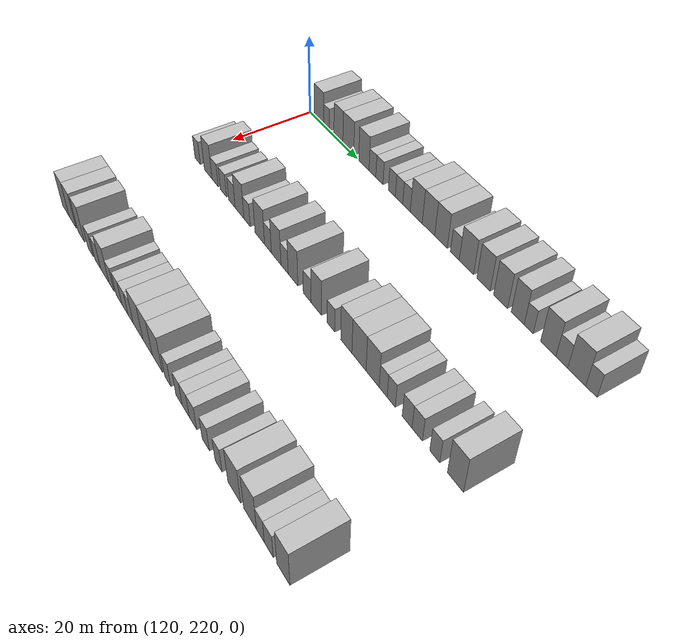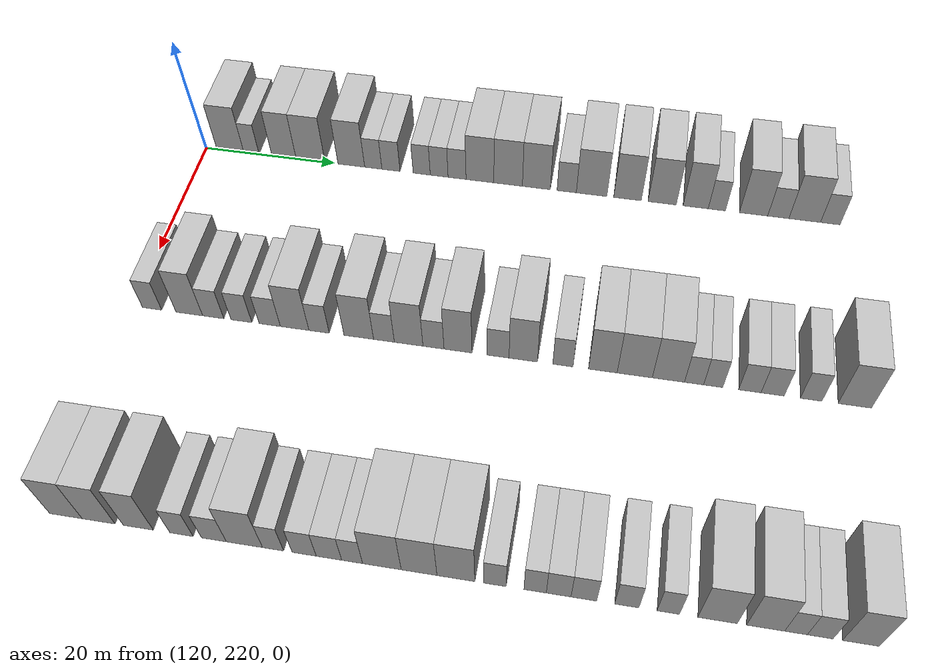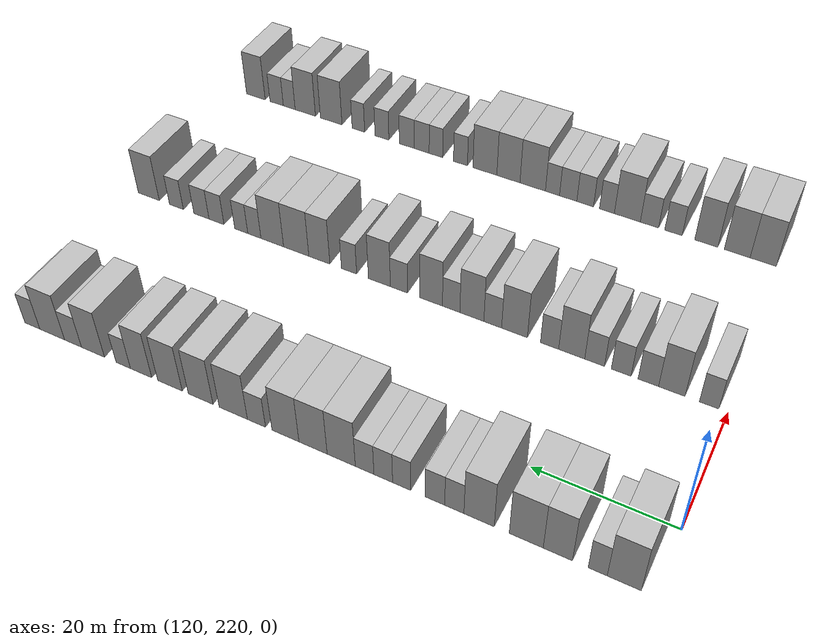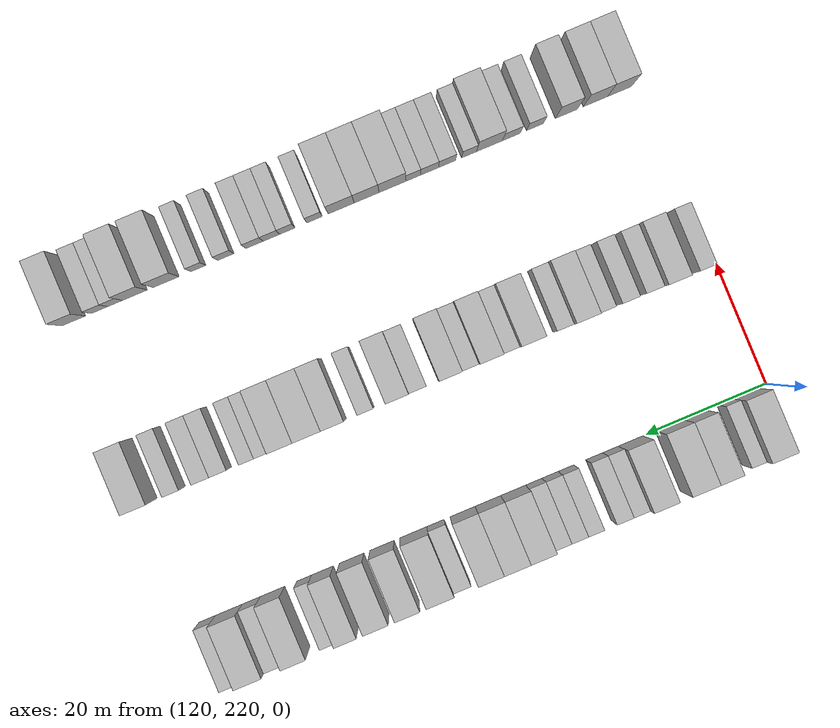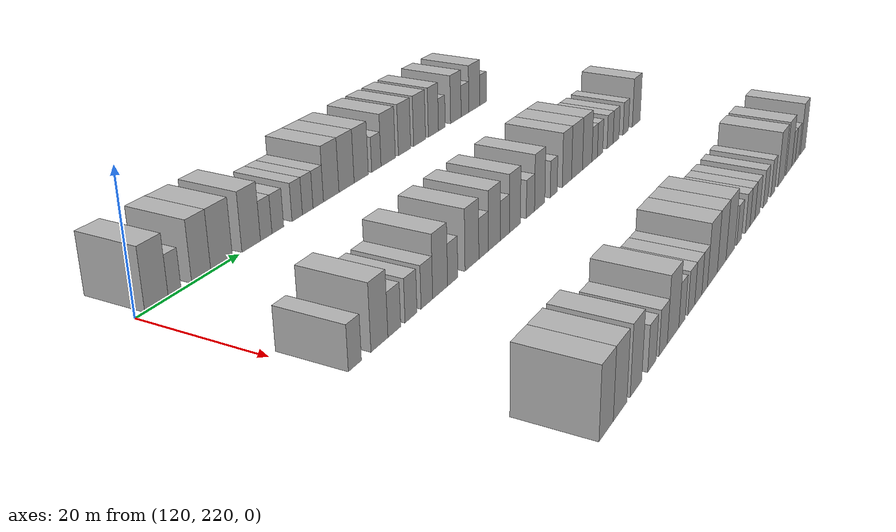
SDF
<sdf version="1.6">
 <world name="default">
  <model name="building_838">
   <static>1</static>
   <pose>115.0000 223.7753 0 0.000000 0.000000 0.000000</pose>
   <link name="link">
    <pose>0 0 4.50 0 0 0</pose>
    <collision name="collision"><geometry><box><size>10.0000 4.2374 9.0000</size></box></geometry></collision>
    <visual name="visual">
     <cast_shadows>0</cast_shadows>
     <geometry><box><size>10.0000 4.2374 9.0000</size></box></geometry>
     <material>
      <script>
       <uri>model://HANNAS_wall/materials/scripts</uri>
       <uri>model://HANNAS_wall/materials/textures</uri>
       <name>vrc/HANNAS_wall</name>
      </script>
     </material>
    </visual>
   </link>
  </model>
  <model name="building_839">
   <static>1</static>
   <pose>115.0000 227.0944 0 0.000000 0.000000 0.000000</pose>
   <link name="link">
    <pose>0 0 3.00 0 0 0</pose>
    <collision name="collision"><geometry><box><size>10.0000 2.4007 6.0000</size></box></geometry></collision>
    <visual name="visual">
     <cast_shadows>0</cast_shadows>
     <geometry><box><size>10.0000 2.4007 6.0000</size></box></geometry>
     <material>
      <script>
       <uri>model://HANNAS_wall/materials/scripts</uri>
       <uri>model://HANNAS_wall/materials/textures</uri>
       <name>vrc/HANNAS_wall</name>
      </script>
     </material>
    </visual>
   </link>
  </model>
  <model name="building_840">
   <static>1</static>
   <pose>115.0000 232.1827 0 0.000000 0.000000 0.000000</pose>
   <link name="link">
    <pose>0 0 4.50 0 0 0</pose>
    <collision name="collision"><geometry><box><size>10.0000 3.7760 9.0000</size></box></geometry></collision>
    <visual name="visual">
     <cast_shadows>0</cast_shadows>
     <geometry><box><size>10.0000 3.7760 9.0000</size></box></geometry>
     <material>
      <script>
       <uri>model://HANNAS_wall/materials/scripts</uri>
       <uri>model://HANNAS_wall/materials/textures</uri>
       <name>vrc/HANNAS_wall</name>
      </script>
     </material>
    </visual>
   </link>
  </model>
  <model name="building_841">
   <static>1</static>
   <pose>115.0000 236.3073 0 0.000000 0.000000 0.000000</pose>
   <link name="link">
    <pose>0 0 4.50 0 0 0</pose>
    <collision name="collision"><geometry><box><size>10.0000 4.4732 9.0000</size></box></geometry></collision>
    <visual name="visual">
     <cast_shadows>0</cast_shadows>
     <geometry><box><size>10.0000 4.4732 9.0000</size></box></geometry>
     <material>
      <script>
       <uri>model://HANNAS_wall/materials/scripts</uri>
       <uri>model://HANNAS_wall/materials/textures</uri>
       <name>vrc/HANNAS_wall</name>
      </script>
     </material>
    </visual>
   </link>
  </model>
  <model name="building_842">
   <static>1</static>
   <pose>115.0000 242.5987 0 0.000000 0.000000 0.000000</pose>
   <link name="link">
    <pose>0 0 4.50 0 0 0</pose>
    <collision name="collision"><geometry><box><size>10.0000 4.1097 9.0000</size></box></geometry></collision>
    <visual name="visual">
     <cast_shadows>0</cast_shadows>
     <geometry><box><size>10.0000 4.1097 9.0000</size></box></geometry>
     <material>
      <script>
       <uri>model://HANNAS_wall/materials/scripts</uri>
       <uri>model://HANNAS_wall/materials/textures</uri>
       <name>vrc/HANNAS_wall</name>
      </script>
     </material>
    </visual>
   </link>
  </model>
  <model name="building_843">
   <static>1</static>
   <pose>115.0000 245.9715 0 0.000000 0.000000 0.000000</pose>
   <link name="link">
    <pose>0 0 3.00 0 0 0</pose>
    <collision name="collision"><geometry><box><size>10.0000 2.6359 6.0000</size></box></geometry></collision>
    <visual name="visual">
     <cast_shadows>0</cast_shadows>
     <geometry><box><size>10.0000 2.6359 6.0000</size></box></geometry>
     <material>
      <script>
       <uri>model://HANNAS_wall/materials/scripts</uri>
       <uri>model://HANNAS_wall/materials/textures</uri>
       <name>vrc/HANNAS_wall</name>
      </script>
     </material>
    </visual>
   </link>
  </model>
  <model name="building_844">
   <static>1</static>
   <pose>115.0000 248.6667 0 0.000000 0.000000 0.000000</pose>
   <link name="link">
    <pose>0 0 3.00 0 0 0</pose>
    <collision name="collision"><geometry><box><size>10.0000 2.7545 6.0000</size></box></geometry></collision>
    <visual name="visual">
     <cast_shadows>0</cast_shadows>
     <geometry><box><size>10.0000 2.7545 6.0000</size></box></geometry>
     <material>
      <script>
       <uri>model://HANNAS_wall/materials/scripts</uri>
       <uri>model://HANNAS_wall/materials/textures</uri>
       <name>vrc/HANNAS_wall</name>
      </script>
     </material>
    </visual>
   </link>
  </model>
  <model name="building_845">
   <static>1</static>
   <pose>115.0000 253.3361 0 0.000000 0.000000 0.000000</pose>
   <link name="link">
    <pose>0 0 3.00 0 0 0</pose>
    <collision name="collision"><geometry><box><size>10.0000 2.5842 6.0000</size></box></geometry></collision>
    <visual name="visual">
     <cast_shadows>0</cast_shadows>
     <geometry><box><size>10.0000 2.5842 6.0000</size></box></geometry>
     <material>
      <script>
       <uri>model://HANNAS_wall/materials/scripts</uri>
       <uri>model://HANNAS_wall/materials/textures</uri>
       <name>vrc/HANNAS_wall</name>
      </script>
     </material>
    </visual>
   </link>
  </model>
  <model name="building_846">
   <static>1</static>
   <pose>115.0000 255.9715 0 0.000000 0.000000 0.000000</pose>
   <link name="link">
    <pose>0 0 3.00 0 0 0</pose>
    <collision name="collision"><geometry><box><size>10.0000 2.6866 6.0000</size></box></geometry></collision>
    <visual name="visual">
     <cast_shadows>0</cast_shadows>
     <geometry><box><size>10.0000 2.6866 6.0000</size></box></geometry>
     <material>
      <script>
       <uri>model://HANNAS_wall/materials/scripts</uri>
       <uri>model://HANNAS_wall/materials/textures</uri>
       <name>vrc/HANNAS_wall</name>
      </script>
     </material>
    </visual>
   </link>
  </model>
  <model name="building_847">
   <static>1</static>
   <pose>115.0000 258.6719 0 0.000000 0.000000 0.000000</pose>
   <link name="link">
    <pose>0 0 3.00 0 0 0</pose>
    <collision name="collision"><geometry><box><size>10.0000 2.7141 6.0000</size></box></geometry></collision>
    <visual name="visual">
     <cast_shadows>0</cast_shadows>
     <geometry><box><size>10.0000 2.7141 6.0000</size></box></geometry>
     <material>
      <script>
       <uri>model://HANNAS_wall/materials/scripts</uri>
       <uri>model://HANNAS_wall/materials/textures</uri>
       <name>vrc/HANNAS_wall</name>
      </script>
     </material>
    </visual>
   </link>
  </model>
  <model name="building_848">
   <static>1</static>
   <pose>115.0000 262.1122 0 0.000000 0.000000 0.000000</pose>
   <link name="link">
    <pose>0 0 4.50 0 0 0</pose>
    <collision name="collision"><geometry><box><size>10.0000 4.1666 9.0000</size></box></geometry></collision>
    <visual name="visual">
     <cast_shadows>0</cast_shadows>
     <geometry><box><size>10.0000 4.1666 9.0000</size></box></geometry>
     <material>
      <script>
       <uri>model://HANNAS_wall/materials/scripts</uri>
       <uri>model://HANNAS_wall/materials/textures</uri>
       <name>vrc/HANNAS_wall</name>
      </script>
     </material>
    </visual>
   </link>
  </model>
  <model name="building_849">
   <static>1</static>
   <pose>115.0000 266.3193 0 0.000000 0.000000 0.000000</pose>
   <link name="link">
    <pose>0 0 4.50 0 0 0</pose>
    <collision name="collision"><geometry><box><size>10.0000 4.2475 9.0000</size></box></geometry></collision>
    <visual name="visual">
     <cast_shadows>0</cast_shadows>
     <geometry><box><size>10.0000 4.2475 9.0000</size></box></geometry>
     <material>
      <script>
       <uri>model://HANNAS_wall/materials/scripts</uri>
       <uri>model://HANNAS_wall/materials/textures</uri>
       <name>vrc/HANNAS_wall</name>
      </script>
     </material>
    </visual>
   </link>
  </model>
  <model name="building_850">
   <static>1</static>
   <pose>115.0000 270.5108 0 0.000000 0.000000 0.000000</pose>
   <link name="link">
    <pose>0 0 4.50 0 0 0</pose>
    <collision name="collision"><geometry><box><size>10.0000 4.1355 9.0000</size></box></geometry></collision>
    <visual name="visual">
     <cast_shadows>0</cast_shadows>
     <geometry><box><size>10.0000 4.1355 9.0000</size></box></geometry>
     <material>
      <script>
       <uri>model://HANNAS_wall/materials/scripts</uri>
       <uri>model://HANNAS_wall/materials/textures</uri>
       <name>vrc/HANNAS_wall</name>
      </script>
     </material>
    </visual>
   </link>
  </model>
  <model name="building_851">
   <static>1</static>
   <pose>115.0000 274.9958 0 0.000000 0.000000 0.000000</pose>
   <link name="link">
    <pose>0 0 3.00 0 0 0</pose>
    <collision name="collision"><geometry><box><size>10.0000 2.8344 6.0000</size></box></geometry></collision>
    <visual name="visual">
     <cast_shadows>0</cast_shadows>
     <geometry><box><size>10.0000 2.8344 6.0000</size></box></geometry>
     <material>
      <script>
       <uri>model://HANNAS_wall/materials/scripts</uri>
       <uri>model://HANNAS_wall/materials/textures</uri>
       <name>vrc/HANNAS_wall</name>
      </script>
     </material>
    </visual>
   </link>
  </model>
  <model name="building_852">
   <static>1</static>
   <pose>115.0000 278.6541 0 0.000000 0.000000 0.000000</pose>
   <link name="link">
    <pose>0 0 4.50 0 0 0</pose>
    <collision name="collision"><geometry><box><size>10.0000 4.4823 9.0000</size></box></geometry></collision>
    <visual name="visual">
     <cast_shadows>0</cast_shadows>
     <geometry><box><size>10.0000 4.4823 9.0000</size></box></geometry>
     <material>
      <script>
       <uri>model://HANNAS_wall/materials/scripts</uri>
       <uri>model://HANNAS_wall/materials/textures</uri>
       <name>vrc/HANNAS_wall</name>
      </script>
     </material>
    </visual>
   </link>
  </model>
  <model name="building_853">
   <static>1</static>
   <pose>115.0000 283.8996 0 0.000000 0.000000 0.000000</pose>
   <link name="link">
    <pose>0 0 4.50 0 0 0</pose>
    <collision name="collision"><geometry><box><size>10.0000 4.0087 9.0000</size></box></geometry></collision>
    <visual name="visual">
     <cast_shadows>0</cast_shadows>
     <geometry><box><size>10.0000 4.0087 9.0000</size></box></geometry>
     <material>
      <script>
       <uri>model://HANNAS_wall/materials/scripts</uri>
       <uri>model://HANNAS_wall/materials/textures</uri>
       <name>vrc/HANNAS_wall</name>
      </script>
     </material>
    </visual>
   </link>
  </model>
  <model name="building_854">
   <static>1</static>
   <pose>115.0000 288.9386 0 0.000000 0.000000 0.000000</pose>
   <link name="link">
    <pose>0 0 4.50 0 0 0</pose>
    <collision name="collision"><geometry><box><size>10.0000 4.0691 9.0000</size></box></geometry></collision>
    <visual name="visual">
     <cast_shadows>0</cast_shadows>
     <geometry><box><size>10.0000 4.0691 9.0000</size></box></geometry>
     <material>
      <script>
       <uri>model://HANNAS_wall/materials/scripts</uri>
       <uri>model://HANNAS_wall/materials/textures</uri>
       <name>vrc/HANNAS_wall</name>
      </script>
     </material>
    </visual>
   </link>
  </model>
  <model name="building_855">
   <static>1</static>
   <pose>115.0000 293.7755 0 0.000000 0.000000 0.000000</pose>
   <link name="link">
    <pose>0 0 4.50 0 0 0</pose>
    <collision name="collision"><geometry><box><size>10.0000 3.6048 9.0000</size></box></geometry></collision>
    <visual name="visual">
     <cast_shadows>0</cast_shadows>
     <geometry><box><size>10.0000 3.6048 9.0000</size></box></geometry>
     <material>
      <script>
       <uri>model://HANNAS_wall/materials/scripts</uri>
       <uri>model://HANNAS_wall/materials/textures</uri>
       <name>vrc/HANNAS_wall</name>
      </script>
     </material>
    </visual>
   </link>
  </model>
  <model name="building_856">
   <static>1</static>
   <pose>115.0000 296.8097 0 0.000000 0.000000 0.000000</pose>
   <link name="link">
    <pose>0 0 3.00 0 0 0</pose>
    <collision name="collision"><geometry><box><size>10.0000 2.4636 6.0000</size></box></geometry></collision>
    <visual name="visual">
     <cast_shadows>0</cast_shadows>
     <geometry><box><size>10.0000 2.4636 6.0000</size></box></geometry>
     <material>
      <script>
       <uri>model://HANNAS_wall/materials/scripts</uri>
       <uri>model://HANNAS_wall/materials/textures</uri>
       <name>vrc/HANNAS_wall</name>
      </script>
     </material>
    </visual>
   </link>
  </model>
  <model name="building_857">
   <static>1</static>
   <pose>115.0000 302.0543 0 0.000000 0.000000 0.000000</pose>
   <link name="link">
    <pose>0 0 4.50 0 0 0</pose>
    <collision name="collision"><geometry><box><size>10.0000 4.0255 9.0000</size></box></geometry></collision>
    <visual name="visual">
     <cast_shadows>0</cast_shadows>
     <geometry><box><size>10.0000 4.0255 9.0000</size></box></geometry>
     <material>
      <script>
       <uri>model://HANNAS_wall/materials/scripts</uri>
       <uri>model://HANNAS_wall/materials/textures</uri>
       <name>vrc/HANNAS_wall</name>
      </script>
     </material>
    </visual>
   </link>
  </model>
  <model name="building_858">
   <static>1</static>
   <pose>115.0000 305.5652 0 0.000000 0.000000 0.000000</pose>
   <link name="link">
    <pose>0 0 3.00 0 0 0</pose>
    <collision name="collision"><geometry><box><size>10.0000 2.9963 6.0000</size></box></geometry></collision>
    <visual name="visual">
     <cast_shadows>0</cast_shadows>
     <geometry><box><size>10.0000 2.9963 6.0000</size></box></geometry>
     <material>
      <script>
       <uri>model://HANNAS_wall/materials/scripts</uri>
       <uri>model://HANNAS_wall/materials/textures</uri>
       <name>vrc/HANNAS_wall</name>
      </script>
     </material>
    </visual>
   </link>
  </model>
  <model name="building_859">
   <static>1</static>
   <pose>115.0000 309.2933 0 0.000000 0.000000 0.000000</pose>
   <link name="link">
    <pose>0 0 4.50 0 0 0</pose>
    <collision name="collision"><geometry><box><size>10.0000 4.4600 9.0000</size></box></geometry></collision>
    <visual name="visual">
     <cast_shadows>0</cast_shadows>
     <geometry><box><size>10.0000 4.4600 9.0000</size></box></geometry>
     <material>
      <script>
       <uri>model://HANNAS_wall/materials/scripts</uri>
       <uri>model://HANNAS_wall/materials/textures</uri>
       <name>vrc/HANNAS_wall</name>
      </script>
     </material>
    </visual>
   </link>
  </model>
  <model name="building_860">
   <static>1</static>
   <pose>115.0000 312.8921 0 0.000000 0.000000 0.000000</pose>
   <link name="link">
    <pose>0 0 3.00 0 0 0</pose>
    <collision name="collision"><geometry><box><size>10.0000 2.7376 6.0000</size></box></geometry></collision>
    <visual name="visual">
     <cast_shadows>0</cast_shadows>
     <geometry><box><size>10.0000 2.7376 6.0000</size></box></geometry>
     <material>
      <script>
       <uri>model://HANNAS_wall/materials/scripts</uri>
       <uri>model://HANNAS_wall/materials/textures</uri>
       <name>vrc/HANNAS_wall</name>
      </script>
     </material>
    </visual>
   </link>
  </model>
  <model name="building_1072">
   <static>1</static>
   <pose>145.0000 222.6580 0 0.000000 0.000000 0.000000</pose>
   <link name="link">
    <pose>0 0 3.00 0 0 0</pose>
    <collision name="collision"><geometry><box><size>10.0000 2.6958 6.0000</size></box></geometry></collision>
    <visual name="visual">
     <cast_shadows>0</cast_shadows>
     <geometry><box><size>10.0000 2.6958 6.0000</size></box></geometry>
     <material>
      <script>
       <uri>model://HANNAS_wall/materials/scripts</uri>
       <uri>model://HANNAS_wall/materials/textures</uri>
       <name>vrc/HANNAS_wall</name>
      </script>
     </material>
    </visual>
   </link>
  </model>
  <model name="building_1073">
   <static>1</static>
   <pose>145.0000 227.8677 0 0.000000 0.000000 0.000000</pose>
   <link name="link">
    <pose>0 0 4.50 0 0 0</pose>
    <collision name="collision"><geometry><box><size>10.0000 3.7236 9.0000</size></box></geometry></collision>
    <visual name="visual">
     <cast_shadows>0</cast_shadows>
     <geometry><box><size>10.0000 3.7236 9.0000</size></box></geometry>
     <material>
      <script>
       <uri>model://HANNAS_wall/materials/scripts</uri>
       <uri>model://HANNAS_wall/materials/textures</uri>
       <name>vrc/HANNAS_wall</name>
      </script>
     </material>
    </visual>
   </link>
  </model>
  <model name="building_1074">
   <static>1</static>
   <pose>145.0000 231.1931 0 0.000000 0.000000 0.000000</pose>
   <link name="link">
    <pose>0 0 3.00 0 0 0</pose>
    <collision name="collision"><geometry><box><size>10.0000 2.9274 6.0000</size></box></geometry></collision>
    <visual name="visual">
     <cast_shadows>0</cast_shadows>
     <geometry><box><size>10.0000 2.9274 6.0000</size></box></geometry>
     <material>
      <script>
       <uri>model://HANNAS_wall/materials/scripts</uri>
       <uri>model://HANNAS_wall/materials/textures</uri>
       <name>vrc/HANNAS_wall</name>
      </script>
     </material>
    </visual>
   </link>
  </model>
  <model name="building_1075">
   <static>1</static>
   <pose>145.0000 235.0927 0 0.000000 0.000000 0.000000</pose>
   <link name="link">
    <pose>0 0 3.00 0 0 0</pose>
    <collision name="collision"><geometry><box><size>10.0000 2.8716 6.0000</size></box></geometry></collision>
    <visual name="visual">
     <cast_shadows>0</cast_shadows>
     <geometry><box><size>10.0000 2.8716 6.0000</size></box></geometry>
     <material>
      <script>
       <uri>model://HANNAS_wall/materials/scripts</uri>
       <uri>model://HANNAS_wall/materials/textures</uri>
       <name>vrc/HANNAS_wall</name>
      </script>
     </material>
    </visual>
   </link>
  </model>
  <model name="building_1076">
   <static>1</static>
   <pose>145.0000 238.9847 0 0.000000 0.000000 0.000000</pose>
   <link name="link">
    <pose>0 0 3.00 0 0 0</pose>
    <collision name="collision"><geometry><box><size>10.0000 2.9124 6.0000</size></box></geometry></collision>
    <visual name="visual">
     <cast_shadows>0</cast_shadows>
     <geometry><box><size>10.0000 2.9124 6.0000</size></box></geometry>
     <material>
      <script>
       <uri>model://HANNAS_wall/materials/scripts</uri>
       <uri>model://HANNAS_wall/materials/textures</uri>
       <name>vrc/HANNAS_wall</name>
      </script>
     </material>
    </visual>
   </link>
  </model>
  <model name="building_1077">
   <static>1</static>
   <pose>145.0000 242.3907 0 0.000000 0.000000 0.000000</pose>
   <link name="link">
    <pose>0 0 4.50 0 0 0</pose>
    <collision name="collision"><geometry><box><size>10.0000 3.8996 9.0000</size></box></geometry></collision>
    <visual name="visual">
     <cast_shadows>0</cast_shadows>
     <geometry><box><size>10.0000 3.8996 9.0000</size></box></geometry>
     <material>
      <script>
       <uri>model://HANNAS_wall/materials/scripts</uri>
       <uri>model://HANNAS_wall/materials/textures</uri>
       <name>vrc/HANNAS_wall</name>
      </script>
     </material>
    </visual>
   </link>
  </model>
  <model name="building_1078">
   <static>1</static>
   <pose>145.0000 245.7192 0 0.000000 0.000000 0.000000</pose>
   <link name="link">
    <pose>0 0 3.00 0 0 0</pose>
    <collision name="collision"><geometry><box><size>10.0000 2.7575 6.0000</size></box></geometry></collision>
    <visual name="visual">
     <cast_shadows>0</cast_shadows>
     <geometry><box><size>10.0000 2.7575 6.0000</size></box></geometry>
     <material>
      <script>
       <uri>model://HANNAS_wall/materials/scripts</uri>
       <uri>model://HANNAS_wall/materials/textures</uri>
       <name>vrc/HANNAS_wall</name>
      </script>
     </material>
    </visual>
   </link>
  </model>
  <model name="building_1079">
   <static>1</static>
   <pose>145.0000 251.0924 0 0.000000 0.000000 0.000000</pose>
   <link name="link">
    <pose>0 0 4.50 0 0 0</pose>
    <collision name="collision"><geometry><box><size>10.0000 3.9887 9.0000</size></box></geometry></collision>
    <visual name="visual">
     <cast_shadows>0</cast_shadows>
     <geometry><box><size>10.0000 3.9887 9.0000</size></box></geometry>
     <material>
      <script>
       <uri>model://HANNAS_wall/materials/scripts</uri>
       <uri>model://HANNAS_wall/materials/textures</uri>
       <name>vrc/HANNAS_wall</name>
      </script>
     </material>
    </visual>
   </link>
  </model>
  <model name="building_1080">
   <static>1</static>
   <pose>145.0000 254.4791 0 0.000000 0.000000 0.000000</pose>
   <link name="link">
    <pose>0 0 3.00 0 0 0</pose>
    <collision name="collision"><geometry><box><size>10.0000 2.7848 6.0000</size></box></geometry></collision>
    <visual name="visual">
     <cast_shadows>0</cast_shadows>
     <geometry><box><size>10.0000 2.7848 6.0000</size></box></geometry>
     <material>
      <script>
       <uri>model://HANNAS_wall/materials/scripts</uri>
       <uri>model://HANNAS_wall/materials/textures</uri>
       <name>vrc/HANNAS_wall</name>
      </script>
     </material>
    </visual>
   </link>
  </model>
  <model name="building_1081">
   <static>1</static>
   <pose>145.0000 257.7798 0 0.000000 0.000000 0.000000</pose>
   <link name="link">
    <pose>0 0 4.50 0 0 0</pose>
    <collision name="collision"><geometry><box><size>10.0000 3.8166 9.0000</size></box></geometry></collision>
    <visual name="visual">
     <cast_shadows>0</cast_shadows>
     <geometry><box><size>10.0000 3.8166 9.0000</size></box></geometry>
     <material>
      <script>
       <uri>model://HANNAS_wall/materials/scripts</uri>
       <uri>model://HANNAS_wall/materials/textures</uri>
       <name>vrc/HANNAS_wall</name>
      </script>
     </material>
    </visual>
   </link>
  </model>
  <model name="building_1082">
   <static>1</static>
   <pose>145.0000 261.0873 0 0.000000 0.000000 0.000000</pose>
   <link name="link">
    <pose>0 0 3.00 0 0 0</pose>
    <collision name="collision"><geometry><box><size>10.0000 2.7983 6.0000</size></box></geometry></collision>
    <visual name="visual">
     <cast_shadows>0</cast_shadows>
     <geometry><box><size>10.0000 2.7983 6.0000</size></box></geometry>
     <material>
      <script>
       <uri>model://HANNAS_wall/materials/scripts</uri>
       <uri>model://HANNAS_wall/materials/textures</uri>
       <name>vrc/HANNAS_wall</name>
      </script>
     </material>
    </visual>
   </link>
  </model>
  <model name="building_1083">
   <static>1</static>
   <pose>145.0000 264.3372 0 0.000000 0.000000 0.000000</pose>
   <link name="link">
    <pose>0 0 4.50 0 0 0</pose>
    <collision name="collision"><geometry><box><size>10.0000 3.7016 9.0000</size></box></geometry></collision>
    <visual name="visual">
     <cast_shadows>0</cast_shadows>
     <geometry><box><size>10.0000 3.7016 9.0000</size></box></geometry>
     <material>
      <script>
       <uri>model://HANNAS_wall/materials/scripts</uri>
       <uri>model://HANNAS_wall/materials/textures</uri>
       <name>vrc/HANNAS_wall</name>
      </script>
     </material>
    </visual>
   </link>
  </model>
  <model name="building_1084">
   <static>1</static>
   <pose>145.0000 269.6205 0 0.000000 0.000000 0.000000</pose>
   <link name="link">
    <pose>0 0 3.00 0 0 0</pose>
    <collision name="collision"><geometry><box><size>10.0000 2.8649 6.0000</size></box></geometry></collision>
    <visual name="visual">
     <cast_shadows>0</cast_shadows>
     <geometry><box><size>10.0000 2.8649 6.0000</size></box></geometry>
     <material>
      <script>
       <uri>model://HANNAS_wall/materials/scripts</uri>
       <uri>model://HANNAS_wall/materials/textures</uri>
       <name>vrc/HANNAS_wall</name>
      </script>
     </material>
    </visual>
   </link>
  </model>
  <model name="building_1085">
   <static>1</static>
   <pose>145.0000 272.9062 0 0.000000 0.000000 0.000000</pose>
   <link name="link">
    <pose>0 0 4.50 0 0 0</pose>
    <collision name="collision"><geometry><box><size>10.0000 3.7065 9.0000</size></box></geometry></collision>
    <visual name="visual">
     <cast_shadows>0</cast_shadows>
     <geometry><box><size>10.0000 3.7065 9.0000</size></box></geometry>
     <material>
      <script>
       <uri>model://HANNAS_wall/materials/scripts</uri>
       <uri>model://HANNAS_wall/materials/textures</uri>
       <name>vrc/HANNAS_wall</name>
      </script>
     </material>
    </visual>
   </link>
  </model>
  <model name="building_1086">
   <static>1</static>
   <pose>145.0000 278.0673 0 0.000000 0.000000 0.000000</pose>
   <link name="link">
    <pose>0 0 3.00 0 0 0</pose>
    <collision name="collision"><geometry><box><size>10.0000 2.6157 6.0000</size></box></geometry></collision>
    <visual name="visual">
     <cast_shadows>0</cast_shadows>
     <geometry><box><size>10.0000 2.6157 6.0000</size></box></geometry>
     <material>
      <script>
       <uri>model://HANNAS_wall/materials/scripts</uri>
       <uri>model://HANNAS_wall/materials/textures</uri>
       <name>vrc/HANNAS_wall</name>
      </script>
     </material>
    </visual>
   </link>
  </model>
  <model name="building_1087">
   <static>1</static>
   <pose>145.0000 283.2160 0 0.000000 0.000000 0.000000</pose>
   <link name="link">
    <pose>0 0 4.50 0 0 0</pose>
    <collision name="collision"><geometry><box><size>10.0000 3.6819 9.0000</size></box></geometry></collision>
    <visual name="visual">
     <cast_shadows>0</cast_shadows>
     <geometry><box><size>10.0000 3.6819 9.0000</size></box></geometry>
     <material>
      <script>
       <uri>model://HANNAS_wall/materials/scripts</uri>
       <uri>model://HANNAS_wall/materials/textures</uri>
       <name>vrc/HANNAS_wall</name>
      </script>
     </material>
    </visual>
   </link>
  </model>
  <model name="building_1088">
   <static>1</static>
   <pose>145.0000 287.3054 0 0.000000 0.000000 0.000000</pose>
   <link name="link">
    <pose>0 0 4.50 0 0 0</pose>
    <collision name="collision"><geometry><box><size>10.0000 4.4969 9.0000</size></box></geometry></collision>
    <visual name="visual">
     <cast_shadows>0</cast_shadows>
     <geometry><box><size>10.0000 4.4969 9.0000</size></box></geometry>
     <material>
      <script>
       <uri>model://HANNAS_wall/materials/scripts</uri>
       <uri>model://HANNAS_wall/materials/textures</uri>
       <name>vrc/HANNAS_wall</name>
      </script>
     </material>
    </visual>
   </link>
  </model>
  <model name="building_1089">
   <static>1</static>
   <pose>145.0000 291.5968 0 0.000000 0.000000 0.000000</pose>
   <link name="link">
    <pose>0 0 4.50 0 0 0</pose>
    <collision name="collision"><geometry><box><size>10.0000 4.0860 9.0000</size></box></geometry></collision>
    <visual name="visual">
     <cast_shadows>0</cast_shadows>
     <geometry><box><size>10.0000 4.0860 9.0000</size></box></geometry>
     <material>
      <script>
       <uri>model://HANNAS_wall/materials/scripts</uri>
       <uri>model://HANNAS_wall/materials/textures</uri>
       <name>vrc/HANNAS_wall</name>
      </script>
     </material>
    </visual>
   </link>
  </model>
  <model name="building_1090">
   <static>1</static>
   <pose>145.0000 294.8433 0 0.000000 0.000000 0.000000</pose>
   <link name="link">
    <pose>0 0 3.00 0 0 0</pose>
    <collision name="collision"><geometry><box><size>10.0000 2.4069 6.0000</size></box></geometry></collision>
    <visual name="visual">
     <cast_shadows>0</cast_shadows>
     <geometry><box><size>10.0000 2.4069 6.0000</size></box></geometry>
     <material>
      <script>
       <uri>model://HANNAS_wall/materials/scripts</uri>
       <uri>model://HANNAS_wall/materials/textures</uri>
       <name>vrc/HANNAS_wall</name>
      </script>
     </material>
    </visual>
   </link>
  </model>
  <model name="building_1091">
   <static>1</static>
   <pose>145.0000 297.2554 0 0.000000 0.000000 0.000000</pose>
   <link name="link">
    <pose>0 0 3.00 0 0 0</pose>
    <collision name="collision"><geometry><box><size>10.0000 2.4174 6.0000</size></box></geometry></collision>
    <visual name="visual">
     <cast_shadows>0</cast_shadows>
     <geometry><box><size>10.0000 2.4174 6.0000</size></box></geometry>
     <material>
      <script>
       <uri>model://HANNAS_wall/materials/scripts</uri>
       <uri>model://HANNAS_wall/materials/textures</uri>
       <name>vrc/HANNAS_wall</name>
      </script>
     </material>
    </visual>
   </link>
  </model>
  <model name="building_1092">
   <static>1</static>
   <pose>145.0000 301.8660 0 0.000000 0.000000 0.000000</pose>
   <link name="link">
    <pose>0 0 3.00 0 0 0</pose>
    <collision name="collision"><geometry><box><size>10.0000 2.8038 6.0000</size></box></geometry></collision>
    <visual name="visual">
     <cast_shadows>0</cast_shadows>
     <geometry><box><size>10.0000 2.8038 6.0000</size></box></geometry>
     <material>
      <script>
       <uri>model://HANNAS_wall/materials/scripts</uri>
       <uri>model://HANNAS_wall/materials/textures</uri>
       <name>vrc/HANNAS_wall</name>
      </script>
     </material>
    </visual>
   </link>
  </model>
  <model name="building_1093">
   <static>1</static>
   <pose>145.0000 304.7062 0 0.000000 0.000000 0.000000</pose>
   <link name="link">
    <pose>0 0 3.00 0 0 0</pose>
    <collision name="collision"><geometry><box><size>10.0000 2.8766 6.0000</size></box></geometry></collision>
    <visual name="visual">
     <cast_shadows>0</cast_shadows>
     <geometry><box><size>10.0000 2.8766 6.0000</size></box></geometry>
     <material>
      <script>
       <uri>model://HANNAS_wall/materials/scripts</uri>
       <uri>model://HANNAS_wall/materials/textures</uri>
       <name>vrc/HANNAS_wall</name>
      </script>
     </material>
    </visual>
   </link>
  </model>
  <model name="building_1094">
   <static>1</static>
   <pose>145.0000 309.4841 0 0.000000 0.000000 0.000000</pose>
   <link name="link">
    <pose>0 0 3.00 0 0 0</pose>
    <collision name="collision"><geometry><box><size>10.0000 2.6793 6.0000</size></box></geometry></collision>
    <visual name="visual">
     <cast_shadows>0</cast_shadows>
     <geometry><box><size>10.0000 2.6793 6.0000</size></box></geometry>
     <material>
      <script>
       <uri>model://HANNAS_wall/materials/scripts</uri>
       <uri>model://HANNAS_wall/materials/textures</uri>
       <name>vrc/HANNAS_wall</name>
      </script>
     </material>
    </visual>
   </link>
  </model>
  <model name="building_1095">
   <static>1</static>
   <pose>145.0000 314.8698 0 0.000000 0.000000 0.000000</pose>
   <link name="link">
    <pose>0 0 4.50 0 0 0</pose>
    <collision name="collision"><geometry><box><size>10.0000 4.0921 9.0000</size></box></geometry></collision>
    <visual name="visual">
     <cast_shadows>0</cast_shadows>
     <geometry><box><size>10.0000 4.0921 9.0000</size></box></geometry>
     <material>
      <script>
       <uri>model://HANNAS_wall/materials/scripts</uri>
       <uri>model://HANNAS_wall/materials/textures</uri>
       <name>vrc/HANNAS_wall</name>
      </script>
     </material>
    </visual>
   </link>
  </model>
  <model name="building_1301">
   <static>1</static>
   <pose>175.0000 223.4286 0 0.000000 0.000000 0.000000</pose>
   <link name="link">
    <pose>0 0 4.50 0 0 0</pose>
    <collision name="collision"><geometry><box><size>10.0000 4.0015 9.0000</size></box></geometry></collision>
    <visual name="visual">
     <cast_shadows>0</cast_shadows>
     <geometry><box><size>10.0000 4.0015 9.0000</size></box></geometry>
     <material>
      <script>
       <uri>model://HANNAS_wall/materials/scripts</uri>
       <uri>model://HANNAS_wall/materials/textures</uri>
       <name>vrc/HANNAS_wall</name>
      </script>
     </material>
    </visual>
   </link>
  </model>
  <model name="building_1302">
   <static>1</static>
   <pose>175.0000 227.4372 0 0.000000 0.000000 0.000000</pose>
   <link name="link">
    <pose>0 0 4.50 0 0 0</pose>
    <collision name="collision"><geometry><box><size>10.0000 4.0156 9.0000</size></box></geometry></collision>
    <visual name="visual">
     <cast_shadows>0</cast_shadows>
     <geometry><box><size>10.0000 4.0156 9.0000</size></box></geometry>
     <material>
      <script>
       <uri>model://HANNAS_wall/materials/scripts</uri>
       <uri>model://HANNAS_wall/materials/textures</uri>
       <name>vrc/HANNAS_wall</name>
      </script>
     </material>
    </visual>
   </link>
  </model>
  <model name="building_1303">
   <static>1</static>
   <pose>175.0000 232.2667 0 0.000000 0.000000 0.000000</pose>
   <link name="link">
    <pose>0 0 4.50 0 0 0</pose>
    <collision name="collision"><geometry><box><size>10.0000 3.6434 9.0000</size></box></geometry></collision>
    <visual name="visual">
     <cast_shadows>0</cast_shadows>
     <geometry><box><size>10.0000 3.6434 9.0000</size></box></geometry>
     <material>
      <script>
       <uri>model://HANNAS_wall/materials/scripts</uri>
       <uri>model://HANNAS_wall/materials/textures</uri>
       <name>vrc/HANNAS_wall</name>
      </script>
     </material>
    </visual>
   </link>
  </model>
  <model name="building_1304">
   <static>1</static>
   <pose>175.0000 237.4912 0 0.000000 0.000000 0.000000</pose>
   <link name="link">
    <pose>0 0 3.00 0 0 0</pose>
    <collision name="collision"><geometry><box><size>10.0000 2.8057 6.0000</size></box></geometry></collision>
    <visual name="visual">
     <cast_shadows>0</cast_shadows>
     <geometry><box><size>10.0000 2.8057 6.0000</size></box></geometry>
     <material>
      <script>
       <uri>model://HANNAS_wall/materials/scripts</uri>
       <uri>model://HANNAS_wall/materials/textures</uri>
       <name>vrc/HANNAS_wall</name>
      </script>
     </material>
    </visual>
   </link>
  </model>
  <model name="building_1305">
   <static>1</static>
   <pose>175.0000 241.3830 0 0.000000 0.000000 0.000000</pose>
   <link name="link">
    <pose>0 0 3.00 0 0 0</pose>
    <collision name="collision"><geometry><box><size>10.0000 2.9778 6.0000</size></box></geometry></collision>
    <visual name="visual">
     <cast_shadows>0</cast_shadows>
     <geometry><box><size>10.0000 2.9778 6.0000</size></box></geometry>
     <material>
      <script>
       <uri>model://HANNAS_wall/materials/scripts</uri>
       <uri>model://HANNAS_wall/materials/textures</uri>
       <name>vrc/HANNAS_wall</name>
      </script>
     </material>
    </visual>
   </link>
  </model>
  <model name="building_1306">
   <static>1</static>
   <pose>175.0000 245.0205 0 0.000000 0.000000 0.000000</pose>
   <link name="link">
    <pose>0 0 4.50 0 0 0</pose>
    <collision name="collision"><geometry><box><size>10.0000 4.2972 9.0000</size></box></geometry></collision>
    <visual name="visual">
     <cast_shadows>0</cast_shadows>
     <geometry><box><size>10.0000 4.2972 9.0000</size></box></geometry>
     <material>
      <script>
       <uri>model://HANNAS_wall/materials/scripts</uri>
       <uri>model://HANNAS_wall/materials/textures</uri>
       <name>vrc/HANNAS_wall</name>
      </script>
     </material>
    </visual>
   </link>
  </model>
  <model name="building_1307">
   <static>1</static>
   <pose>175.0000 248.4169 0 0.000000 0.000000 0.000000</pose>
   <link name="link">
    <pose>0 0 3.00 0 0 0</pose>
    <collision name="collision"><geometry><box><size>10.0000 2.4955 6.0000</size></box></geometry></collision>
    <visual name="visual">
     <cast_shadows>0</cast_shadows>
     <geometry><box><size>10.0000 2.4955 6.0000</size></box></geometry>
     <material>
      <script>
       <uri>model://HANNAS_wall/materials/scripts</uri>
       <uri>model://HANNAS_wall/materials/textures</uri>
       <name>vrc/HANNAS_wall</name>
      </script>
     </material>
    </visual>
   </link>
  </model>
  <model name="building_1308">
   <static>1</static>
   <pose>175.0000 252.0789 0 0.000000 0.000000 0.000000</pose>
   <link name="link">
    <pose>0 0 3.00 0 0 0</pose>
    <collision name="collision"><geometry><box><size>10.0000 2.8286 6.0000</size></box></geometry></collision>
    <visual name="visual">
     <cast_shadows>0</cast_shadows>
     <geometry><box><size>10.0000 2.8286 6.0000</size></box></geometry>
     <material>
      <script>
       <uri>model://HANNAS_wall/materials/scripts</uri>
       <uri>model://HANNAS_wall/materials/textures</uri>
       <name>vrc/HANNAS_wall</name>
      </script>
     </material>
    </visual>
   </link>
  </model>
  <model name="building_1309">
   <static>1</static>
   <pose>175.0000 254.9775 0 0.000000 0.000000 0.000000</pose>
   <link name="link">
    <pose>0 0 3.00 0 0 0</pose>
    <collision name="collision"><geometry><box><size>10.0000 2.9686 6.0000</size></box></geometry></collision>
    <visual name="visual">
     <cast_shadows>0</cast_shadows>
     <geometry><box><size>10.0000 2.9686 6.0000</size></box></geometry>
     <material>
      <script>
       <uri>model://HANNAS_wall/materials/scripts</uri>
       <uri>model://HANNAS_wall/materials/textures</uri>
       <name>vrc/HANNAS_wall</name>
      </script>
     </material>
    </visual>
   </link>
  </model>
  <model name="building_1310">
   <static>1</static>
   <pose>175.0000 257.6792 0 0.000000 0.000000 0.000000</pose>
   <link name="link">
    <pose>0 0 3.00 0 0 0</pose>
    <collision name="collision"><geometry><box><size>10.0000 2.4349 6.0000</size></box></geometry></collision>
    <visual name="visual">
     <cast_shadows>0</cast_shadows>
     <geometry><box><size>10.0000 2.4349 6.0000</size></box></geometry>
     <material>
      <script>
       <uri>model://HANNAS_wall/materials/scripts</uri>
       <uri>model://HANNAS_wall/materials/textures</uri>
       <name>vrc/HANNAS_wall</name>
      </script>
     </material>
    </visual>
   </link>
  </model>
  <model name="building_1311">
   <static>1</static>
   <pose>175.0000 261.1270 0 0.000000 0.000000 0.000000</pose>
   <link name="link">
    <pose>0 0 4.50 0 0 0</pose>
    <collision name="collision"><geometry><box><size>10.0000 4.4606 9.0000</size></box></geometry></collision>
    <visual name="visual">
     <cast_shadows>0</cast_shadows>
     <geometry><box><size>10.0000 4.4606 9.0000</size></box></geometry>
     <material>
      <script>
       <uri>model://HANNAS_wall/materials/scripts</uri>
       <uri>model://HANNAS_wall/materials/textures</uri>
       <name>vrc/HANNAS_wall</name>
      </script>
     </material>
    </visual>
   </link>
  </model>
  <model name="building_1312">
   <static>1</static>
   <pose>175.0000 265.4111 0 0.000000 0.000000 0.000000</pose>
   <link name="link">
    <pose>0 0 4.50 0 0 0</pose>
    <collision name="collision"><geometry><box><size>10.0000 4.1077 9.0000</size></box></geometry></collision>
    <visual name="visual">
     <cast_shadows>0</cast_shadows>
     <geometry><box><size>10.0000 4.1077 9.0000</size></box></geometry>
     <material>
      <script>
       <uri>model://HANNAS_wall/materials/scripts</uri>
       <uri>model://HANNAS_wall/materials/textures</uri>
       <name>vrc/HANNAS_wall</name>
      </script>
     </material>
    </visual>
   </link>
  </model>
  <model name="building_1313">
   <static>1</static>
   <pose>175.0000 269.6226 0 0.000000 0.000000 0.000000</pose>
   <link name="link">
    <pose>0 0 4.50 0 0 0</pose>
    <collision name="collision"><geometry><box><size>10.0000 4.3152 9.0000</size></box></geometry></collision>
    <visual name="visual">
     <cast_shadows>0</cast_shadows>
     <geometry><box><size>10.0000 4.3152 9.0000</size></box></geometry>
     <material>
      <script>
       <uri>model://HANNAS_wall/materials/scripts</uri>
       <uri>model://HANNAS_wall/materials/textures</uri>
       <name>vrc/HANNAS_wall</name>
      </script>
     </material>
    </visual>
   </link>
  </model>
  <model name="building_1314">
   <static>1</static>
   <pose>175.0000 274.0537 0 0.000000 0.000000 0.000000</pose>
   <link name="link">
    <pose>0 0 3.00 0 0 0</pose>
    <collision name="collision"><geometry><box><size>10.0000 2.5471 6.0000</size></box></geometry></collision>
    <visual name="visual">
     <cast_shadows>0</cast_shadows>
     <geometry><box><size>10.0000 2.5471 6.0000</size></box></geometry>
     <material>
      <script>
       <uri>model://HANNAS_wall/materials/scripts</uri>
       <uri>model://HANNAS_wall/materials/textures</uri>
       <name>vrc/HANNAS_wall</name>
      </script>
     </material>
    </visual>
   </link>
  </model>
  <model name="building_1315">
   <static>1</static>
   <pose>175.0000 278.5808 0 0.000000 0.000000 0.000000</pose>
   <link name="link">
    <pose>0 0 3.00 0 0 0</pose>
    <collision name="collision"><geometry><box><size>10.0000 2.5070 6.0000</size></box></geometry></collision>
    <visual name="visual">
     <cast_shadows>0</cast_shadows>
     <geometry><box><size>10.0000 2.5070 6.0000</size></box></geometry>
     <material>
      <script>
       <uri>model://HANNAS_wall/materials/scripts</uri>
       <uri>model://HANNAS_wall/materials/textures</uri>
       <name>vrc/HANNAS_wall</name>
      </script>
     </material>
    </visual>
   </link>
  </model>
  <model name="building_1316">
   <static>1</static>
   <pose>175.0000 281.2154 0 0.000000 0.000000 0.000000</pose>
   <link name="link">
    <pose>0 0 3.00 0 0 0</pose>
    <collision name="collision"><geometry><box><size>10.0000 2.7623 6.0000</size></box></geometry></collision>
    <visual name="visual">
     <cast_shadows>0</cast_shadows>
     <geometry><box><size>10.0000 2.7623 6.0000</size></box></geometry>
     <material>
      <script>
       <uri>model://HANNAS_wall/materials/scripts</uri>
       <uri>model://HANNAS_wall/materials/textures</uri>
       <name>vrc/HANNAS_wall</name>
      </script>
     </material>
    </visual>
   </link>
  </model>
  <model name="building_1317">
   <static>1</static>
   <pose>175.0000 284.0224 0 0.000000 0.000000 0.000000</pose>
   <link name="link">
    <pose>0 0 3.00 0 0 0</pose>
    <collision name="collision"><geometry><box><size>10.0000 2.8517 6.0000</size></box></geometry></collision>
    <visual name="visual">
     <cast_shadows>0</cast_shadows>
     <geometry><box><size>10.0000 2.8517 6.0000</size></box></geometry>
     <material>
      <script>
       <uri>model://HANNAS_wall/materials/scripts</uri>
       <uri>model://HANNAS_wall/materials/textures</uri>
       <name>vrc/HANNAS_wall</name>
      </script>
     </material>
    </visual>
   </link>
  </model>
  <model name="building_1318">
   <static>1</static>
   <pose>175.0000 288.7836 0 0.000000 0.000000 0.000000</pose>
   <link name="link">
    <pose>0 0 3.00 0 0 0</pose>
    <collision name="collision"><geometry><box><size>10.0000 2.6707 6.0000</size></box></geometry></collision>
    <visual name="visual">
     <cast_shadows>0</cast_shadows>
     <geometry><box><size>10.0000 2.6707 6.0000</size></box></geometry>
     <material>
      <script>
       <uri>model://HANNAS_wall/materials/scripts</uri>
       <uri>model://HANNAS_wall/materials/textures</uri>
       <name>vrc/HANNAS_wall</name>
      </script>
     </material>
    </visual>
   </link>
  </model>
  <model name="building_1319">
   <static>1</static>
   <pose>175.0000 293.3439 0 0.000000 0.000000 0.000000</pose>
   <link name="link">
    <pose>0 0 3.00 0 0 0</pose>
    <collision name="collision"><geometry><box><size>10.0000 2.4499 6.0000</size></box></geometry></collision>
    <visual name="visual">
     <cast_shadows>0</cast_shadows>
     <geometry><box><size>10.0000 2.4499 6.0000</size></box></geometry>
     <material>
      <script>
       <uri>model://HANNAS_wall/materials/scripts</uri>
       <uri>model://HANNAS_wall/materials/textures</uri>
       <name>vrc/HANNAS_wall</name>
      </script>
     </material>
    </visual>
   </link>
  </model>
  <model name="building_1320">
   <static>1</static>
   <pose>175.0000 298.7109 0 0.000000 0.000000 0.000000</pose>
   <link name="link">
    <pose>0 0 4.50 0 0 0</pose>
    <collision name="collision"><geometry><box><size>10.0000 4.2842 9.0000</size></box></geometry></collision>
    <visual name="visual">
     <cast_shadows>0</cast_shadows>
     <geometry><box><size>10.0000 4.2842 9.0000</size></box></geometry>
     <material>
      <script>
       <uri>model://HANNAS_wall/materials/scripts</uri>
       <uri>model://HANNAS_wall/materials/textures</uri>
       <name>vrc/HANNAS_wall</name>
      </script>
     </material>
    </visual>
   </link>
  </model>
  <model name="building_1321">
   <static>1</static>
   <pose>175.0000 303.9028 0 0.000000 0.000000 0.000000</pose>
   <link name="link">
    <pose>0 0 4.50 0 0 0</pose>
    <collision name="collision"><geometry><box><size>10.0000 4.0995 9.0000</size></box></geometry></collision>
    <visual name="visual">
     <cast_shadows>0</cast_shadows>
     <geometry><box><size>10.0000 4.0995 9.0000</size></box></geometry>
     <material>
      <script>
       <uri>model://HANNAS_wall/materials/scripts</uri>
       <uri>model://HANNAS_wall/materials/textures</uri>
       <name>vrc/HANNAS_wall</name>
      </script>
     </material>
    </visual>
   </link>
  </model>
  <model name="building_1322">
   <static>1</static>
   <pose>175.0000 307.1619 0 0.000000 0.000000 0.000000</pose>
   <link name="link">
    <pose>0 0 3.00 0 0 0</pose>
    <collision name="collision"><geometry><box><size>10.0000 2.4186 6.0000</size></box></geometry></collision>
    <visual name="visual">
     <cast_shadows>0</cast_shadows>
     <geometry><box><size>10.0000 2.4186 6.0000</size></box></geometry>
     <material>
      <script>
       <uri>model://HANNAS_wall/materials/scripts</uri>
       <uri>model://HANNAS_wall/materials/textures</uri>
       <name>vrc/HANNAS_wall</name>
      </script>
     </material>
    </visual>
   </link>
  </model>
  <model name="building_1323">
   <static>1</static>
   <pose>175.0000 309.7402 0 0.000000 0.000000 0.000000</pose>
   <link name="link">
    <pose>0 0 3.00 0 0 0</pose>
    <collision name="collision"><geometry><box><size>10.0000 2.7382 6.0000</size></box></geometry></collision>
    <visual name="visual">
     <cast_shadows>0</cast_shadows>
     <geometry><box><size>10.0000 2.7382 6.0000</size></box></geometry>
     <material>
      <script>
       <uri>model://HANNAS_wall/materials/scripts</uri>
       <uri>model://HANNAS_wall/materials/textures</uri>
       <name>vrc/HANNAS_wall</name>
      </script>
     </material>
    </visual>
   </link>
  </model>
  <model name="building_1324">
   <static>1</static>
   <pose>175.0000 314.0463 0 0.000000 0.000000 0.000000</pose>
   <link name="link">
    <pose>0 0 4.50 0 0 0</pose>
    <collision name="collision"><geometry><box><size>10.0000 3.8739 9.0000</size></box></geometry></collision>
    <visual name="visual">
     <cast_shadows>0</cast_shadows>
     <geometry><box><size>10.0000 3.8739 9.0000</size></box></geometry>
     <material>
      <script>
       <uri>model://HANNAS_wall/materials/scripts</uri>
       <uri>model://HANNAS_wall/materials/textures</uri>
       <name>vrc/HANNAS_wall</name>
      </script>
     </material>
    </visual>
   </link>
  </model>
 </world>
</sdf>
